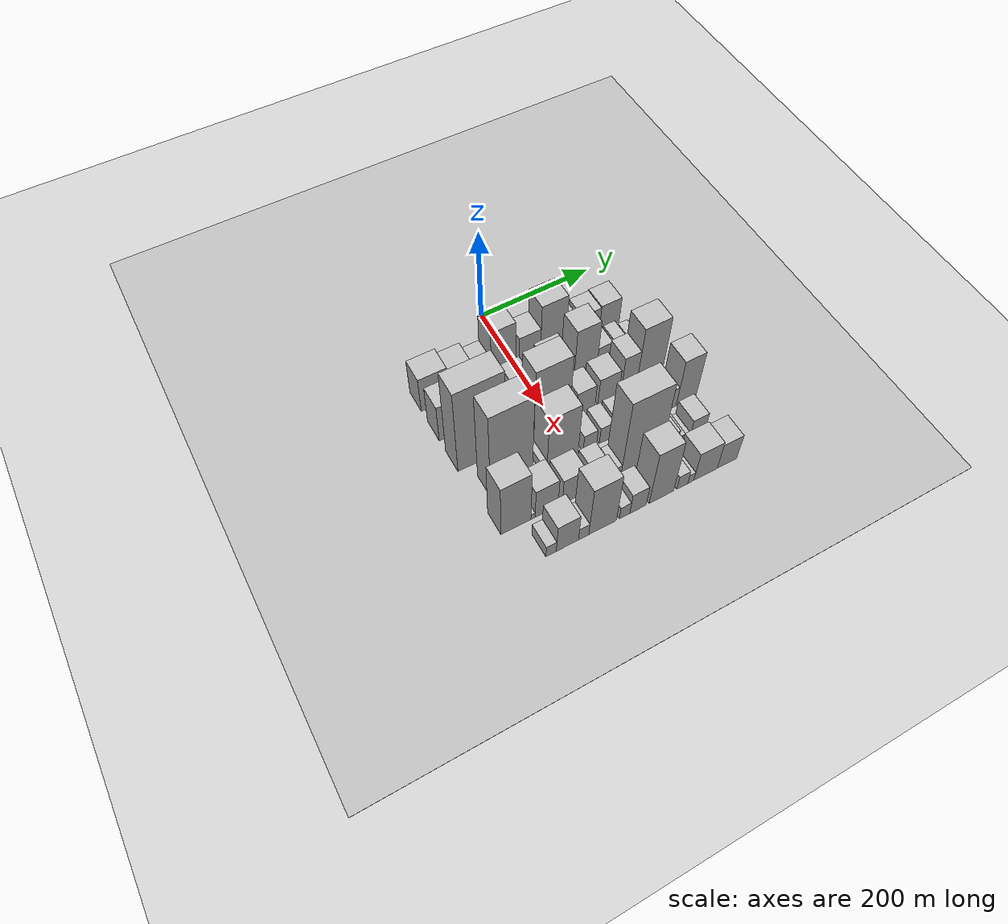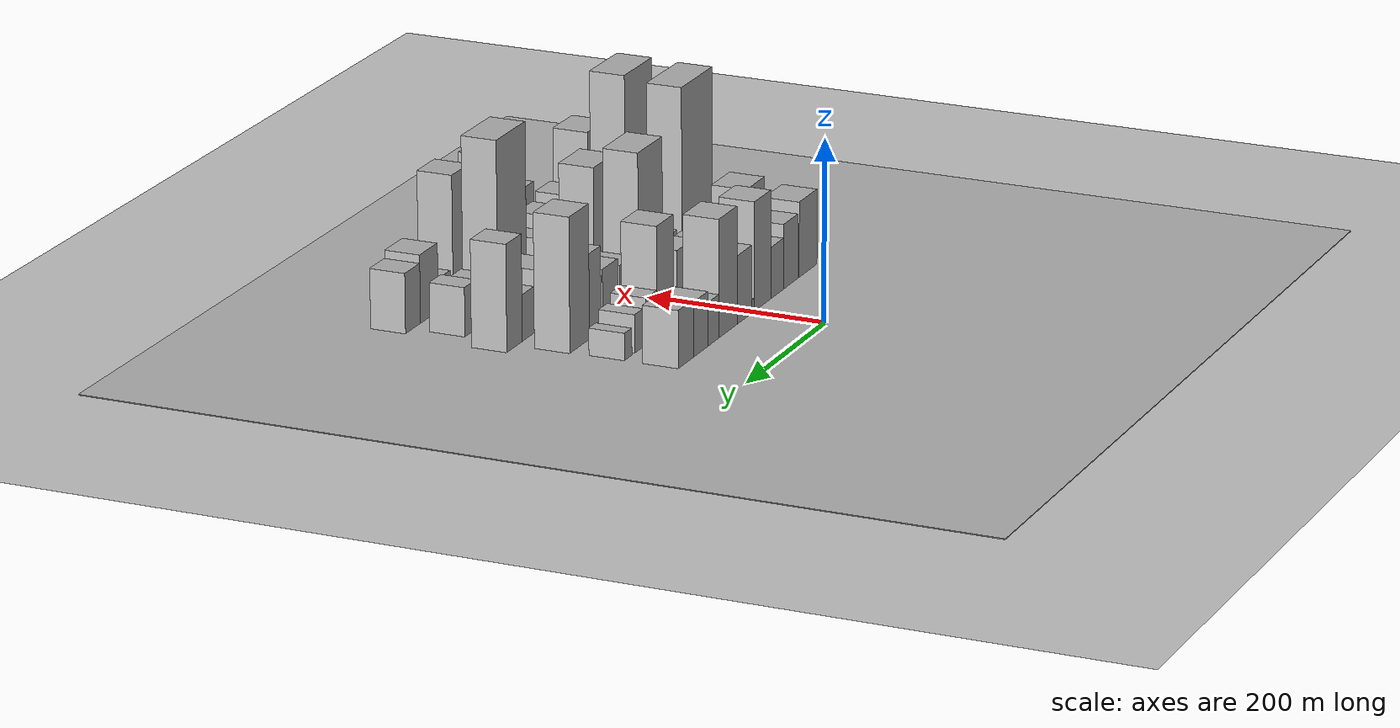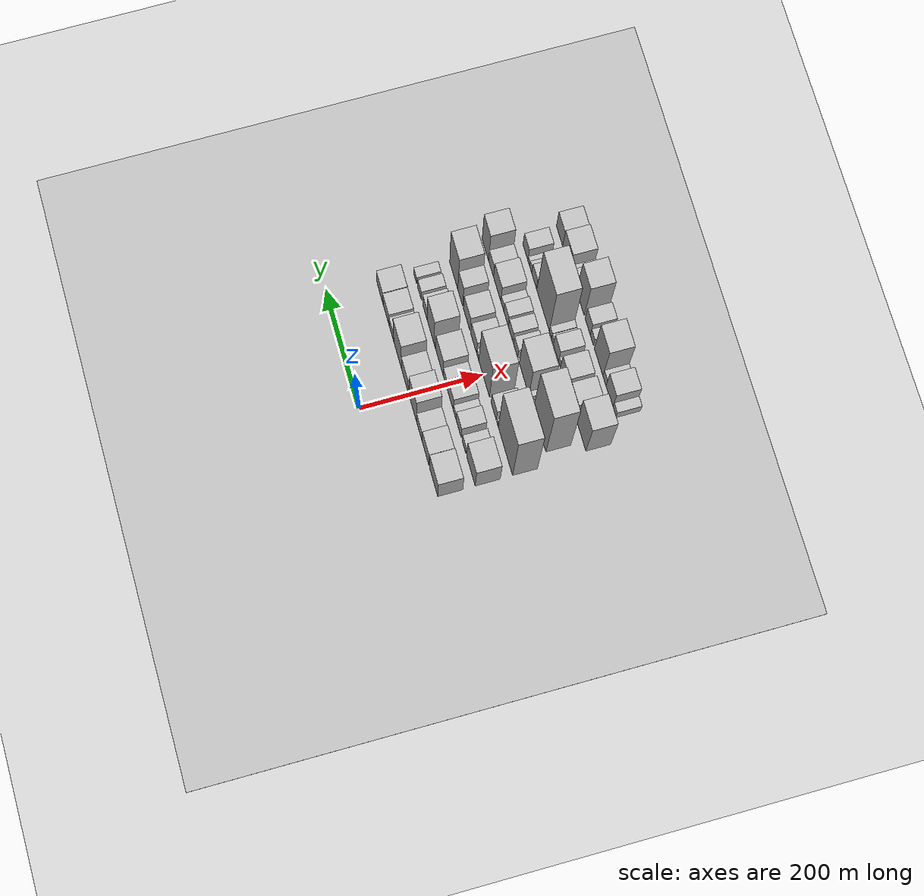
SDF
<sdf version="1.6">
 <world name="default">
  <include><name>ground_plane_1</name><uri>model://HANNAS_ground_plane</uri></include>
  <include>
   <name>ground_plane_2</name>
   <uri>model://HANNAS_ground_plane</uri>
   <pose>100 0 0  0 0 0</pose>
  </include>
  <model name="building_21">
   <static>1</static>
   <pose>100.0000 -144.0142 0 0.000000 0.000000 0.000000</pose>
   <link name="link">
    <pose>0 0 42.00 0 0 0</pose>
    <collision name="collision"><geometry><box><size>40.0000 47.6441 84.0000</size></box></geometry></collision>
    <visual name="visual">
     <cast_shadows>0</cast_shadows>
     <geometry><box><size>40.0000 47.6441 84.0000</size></box></geometry>
     <material>
      <script>
       <uri>model://HANNAS_wall/materials/scripts</uri>
       <uri>model://HANNAS_wall/materials/textures</uri>
       <name>vrc/HANNAS_wall</name>
      </script>
     </material>
    </visual>
   </link>
  </model>
  <model name="building_22">
   <static>1</static>
   <pose>100.0000 -98.3070 0 0.000000 0.000000 0.000000</pose>
   <link name="link">
    <pose>0 0 36.00 0 0 0</pose>
    <collision name="collision"><geometry><box><size>40.0000 37.7701 72.0000</size></box></geometry></collision>
    <visual name="visual">
     <cast_shadows>0</cast_shadows>
     <geometry><box><size>40.0000 37.7701 72.0000</size></box></geometry>
     <material>
      <script>
       <uri>model://HANNAS_wall/materials/scripts</uri>
       <uri>model://HANNAS_wall/materials/textures</uri>
       <name>vrc/HANNAS_wall</name>
      </script>
     </material>
    </visual>
   </link>
  </model>
  <model name="building_23">
   <static>1</static>
   <pose>100.0000 -62.7000 0 0.000000 0.000000 0.000000</pose>
   <link name="link">
    <pose>0 0 28.50 0 0 0</pose>
    <collision name="collision"><geometry><box><size>40.0000 33.4441 57.0000</size></box></geometry></collision>
    <visual name="visual">
     <cast_shadows>0</cast_shadows>
     <geometry><box><size>40.0000 33.4441 57.0000</size></box></geometry>
     <material>
      <script>
       <uri>model://HANNAS_wall/materials/scripts</uri>
       <uri>model://HANNAS_wall/materials/textures</uri>
       <name>vrc/HANNAS_wall</name>
      </script>
     </material>
    </visual>
   </link>
  </model>
  <model name="building_24">
   <static>1</static>
   <pose>100.0000 -24.4865 0 0.000000 0.000000 0.000000</pose>
   <link name="link">
    <pose>0 0 60.00 0 0 0</pose>
    <collision name="collision"><geometry><box><size>40.0000 42.9828 120.0000</size></box></geometry></collision>
    <visual name="visual">
     <cast_shadows>0</cast_shadows>
     <geometry><box><size>40.0000 42.9828 120.0000</size></box></geometry>
     <material>
      <script>
       <uri>model://HANNAS_wall/materials/scripts</uri>
       <uri>model://HANNAS_wall/materials/textures</uri>
       <name>vrc/HANNAS_wall</name>
      </script>
     </material>
    </visual>
   </link>
  </model>
  <model name="building_25">
   <static>1</static>
   <pose>100.0000 0.1174 0 0.000000 0.000000 0.000000</pose>
   <link name="link">
    <pose>0 0 7.50 0 0 0</pose>
    <collision name="collision"><geometry><box><size>40.0000 6.2250 15.0000</size></box></geometry></collision>
    <visual name="visual">
     <cast_shadows>0</cast_shadows>
     <geometry><box><size>40.0000 6.2250 15.0000</size></box></geometry>
     <material>
      <script>
       <uri>model://HANNAS_wall/materials/scripts</uri>
       <uri>model://HANNAS_wall/materials/textures</uri>
       <name>vrc/HANNAS_wall</name>
      </script>
     </material>
    </visual>
   </link>
  </model>
  <model name="building_26">
   <static>1</static>
   <pose>100.0000 22.4754 0 0.000000 0.000000 0.000000</pose>
   <link name="link">
    <pose>0 0 37.50 0 0 0</pose>
    <collision name="collision"><geometry><box><size>40.0000 38.4909 75.0000</size></box></geometry></collision>
    <visual name="visual">
     <cast_shadows>0</cast_shadows>
     <geometry><box><size>40.0000 38.4909 75.0000</size></box></geometry>
     <material>
      <script>
       <uri>model://HANNAS_wall/materials/scripts</uri>
       <uri>model://HANNAS_wall/materials/textures</uri>
       <name>vrc/HANNAS_wall</name>
      </script>
     </material>
    </visual>
   </link>
  </model>
  <model name="building_27">
   <static>1</static>
   <pose>100.0000 64.9591 0 0.000000 0.000000 0.000000</pose>
   <link name="link">
    <pose>0 0 64.50 0 0 0</pose>
    <collision name="collision"><geometry><box><size>40.0000 46.4764 129.0000</size></box></geometry></collision>
    <visual name="visual">
     <cast_shadows>0</cast_shadows>
     <geometry><box><size>40.0000 46.4764 129.0000</size></box></geometry>
     <material>
      <script>
       <uri>model://HANNAS_wall/materials/scripts</uri>
       <uri>model://HANNAS_wall/materials/textures</uri>
       <name>vrc/HANNAS_wall</name>
      </script>
     </material>
    </visual>
   </link>
  </model>
  <model name="building_28">
   <static>1</static>
   <pose>100.0000 101.8593 0 0.000000 0.000000 0.000000</pose>
   <link name="link">
    <pose>0 0 24.00 0 0 0</pose>
    <collision name="collision"><geometry><box><size>40.0000 27.3241 48.0000</size></box></geometry></collision>
    <visual name="visual">
     <cast_shadows>0</cast_shadows>
     <geometry><box><size>40.0000 27.3241 48.0000</size></box></geometry>
     <material>
      <script>
       <uri>model://HANNAS_wall/materials/scripts</uri>
       <uri>model://HANNAS_wall/materials/textures</uri>
       <name>vrc/HANNAS_wall</name>
      </script>
     </material>
    </visual>
   </link>
  </model>
  <model name="building_29">
   <static>1</static>
   <pose>100.0000 133.4685 0 0.000000 0.000000 0.000000</pose>
   <link name="link">
    <pose>0 0 30.00 0 0 0</pose>
    <collision name="collision"><geometry><box><size>40.0000 35.8943 60.0000</size></box></geometry></collision>
    <visual name="visual">
     <cast_shadows>0</cast_shadows>
     <geometry><box><size>40.0000 35.8943 60.0000</size></box></geometry>
     <material>
      <script>
       <uri>model://HANNAS_wall/materials/scripts</uri>
       <uri>model://HANNAS_wall/materials/textures</uri>
       <name>vrc/HANNAS_wall</name>
      </script>
     </material>
    </visual>
   </link>
  </model>
  <model name="building_30">
   <static>1</static>
   <pose>100.0000 170.2295 0 0.000000 0.000000 0.000000</pose>
   <link name="link">
    <pose>0 0 31.50 0 0 0</pose>
    <collision name="collision"><geometry><box><size>40.0000 37.6278 63.0000</size></box></geometry></collision>
    <visual name="visual">
     <cast_shadows>0</cast_shadows>
     <geometry><box><size>40.0000 37.6278 63.0000</size></box></geometry>
     <material>
      <script>
       <uri>model://HANNAS_wall/materials/scripts</uri>
       <uri>model://HANNAS_wall/materials/textures</uri>
       <name>vrc/HANNAS_wall</name>
      </script>
     </material>
    </visual>
   </link>
  </model>
  <model name="building_77">
   <static>1</static>
   <pose>160.0000 -143.2705 0 0.000000 0.000000 0.000000</pose>
   <link name="link">
    <pose>0 0 45.00 0 0 0</pose>
    <collision name="collision"><geometry><box><size>40.0000 47.9055 90.0000</size></box></geometry></collision>
    <visual name="visual">
     <cast_shadows>0</cast_shadows>
     <geometry><box><size>40.0000 47.9055 90.0000</size></box></geometry>
     <material>
      <script>
       <uri>model://HANNAS_wall/materials/scripts</uri>
       <uri>model://HANNAS_wall/materials/textures</uri>
       <name>vrc/HANNAS_wall</name>
      </script>
     </material>
    </visual>
   </link>
  </model>
  <model name="building_78">
   <static>1</static>
   <pose>160.0000 -103.8420 0 0.000000 0.000000 0.000000</pose>
   <link name="link">
    <pose>0 0 19.50 0 0 0</pose>
    <collision name="collision"><geometry><box><size>40.0000 20.9514 39.0000</size></box></geometry></collision>
    <visual name="visual">
     <cast_shadows>0</cast_shadows>
     <geometry><box><size>40.0000 20.9514 39.0000</size></box></geometry>
     <material>
      <script>
       <uri>model://HANNAS_wall/materials/scripts</uri>
       <uri>model://HANNAS_wall/materials/textures</uri>
       <name>vrc/HANNAS_wall</name>
      </script>
     </material>
    </visual>
   </link>
  </model>
  <model name="building_79">
   <static>1</static>
   <pose>160.0000 -73.3460 0 0.000000 0.000000 0.000000</pose>
   <link name="link">
    <pose>0 0 27.00 0 0 0</pose>
    <collision name="collision"><geometry><box><size>40.0000 28.0406 54.0000</size></box></geometry></collision>
    <visual name="visual">
     <cast_shadows>0</cast_shadows>
     <geometry><box><size>40.0000 28.0406 54.0000</size></box></geometry>
     <material>
      <script>
       <uri>model://HANNAS_wall/materials/scripts</uri>
       <uri>model://HANNAS_wall/materials/textures</uri>
       <name>vrc/HANNAS_wall</name>
      </script>
     </material>
    </visual>
   </link>
  </model>
  <model name="building_80">
   <static>1</static>
   <pose>160.0000 -50.8423 0 0.000000 0.000000 0.000000</pose>
   <link name="link">
    <pose>0 0 16.50 0 0 0</pose>
    <collision name="collision"><geometry><box><size>40.0000 16.9666 33.0000</size></box></geometry></collision>
    <visual name="visual">
     <cast_shadows>0</cast_shadows>
     <geometry><box><size>40.0000 16.9666 33.0000</size></box></geometry>
     <material>
      <script>
       <uri>model://HANNAS_wall/materials/scripts</uri>
       <uri>model://HANNAS_wall/materials/textures</uri>
       <name>vrc/HANNAS_wall</name>
      </script>
     </material>
    </visual>
   </link>
  </model>
  <model name="building_81">
   <static>1</static>
   <pose>160.0000 -25.5611 0 0.000000 0.000000 0.000000</pose>
   <link name="link">
    <pose>0 0 31.50 0 0 0</pose>
    <collision name="collision"><geometry><box><size>40.0000 33.5958 63.0000</size></box></geometry></collision>
    <visual name="visual">
     <cast_shadows>0</cast_shadows>
     <geometry><box><size>40.0000 33.5958 63.0000</size></box></geometry>
     <material>
      <script>
       <uri>model://HANNAS_wall/materials/scripts</uri>
       <uri>model://HANNAS_wall/materials/textures</uri>
       <name>vrc/HANNAS_wall</name>
      </script>
     </material>
    </visual>
   </link>
  </model>
  <model name="building_82">
   <static>1</static>
   <pose>160.0000 3.8361 0 0.000000 0.000000 0.000000</pose>
   <link name="link">
    <pose>0 0 21.00 0 0 0</pose>
    <collision name="collision"><geometry><box><size>40.0000 25.1987 42.0000</size></box></geometry></collision>
    <visual name="visual">
     <cast_shadows>0</cast_shadows>
     <geometry><box><size>40.0000 25.1987 42.0000</size></box></geometry>
     <material>
      <script>
       <uri>model://HANNAS_wall/materials/scripts</uri>
       <uri>model://HANNAS_wall/materials/textures</uri>
       <name>vrc/HANNAS_wall</name>
      </script>
     </material>
    </visual>
   </link>
  </model>
  <model name="building_83">
   <static>1</static>
   <pose>160.0000 37.7753 0 0.000000 0.000000 0.000000</pose>
   <link name="link">
    <pose>0 0 39.00 0 0 0</pose>
    <collision name="collision"><geometry><box><size>40.0000 42.6795 78.0000</size></box></geometry></collision>
    <visual name="visual">
     <cast_shadows>0</cast_shadows>
     <geometry><box><size>40.0000 42.6795 78.0000</size></box></geometry>
     <material>
      <script>
       <uri>model://HANNAS_wall/materials/scripts</uri>
       <uri>model://HANNAS_wall/materials/textures</uri>
       <name>vrc/HANNAS_wall</name>
      </script>
     </material>
    </visual>
   </link>
  </model>
  <model name="building_84">
   <static>1</static>
   <pose>160.0000 63.5504 0 0.000000 0.000000 0.000000</pose>
   <link name="link">
    <pose>0 0 10.50 0 0 0</pose>
    <collision name="collision"><geometry><box><size>40.0000 8.8708 21.0000</size></box></geometry></collision>
    <visual name="visual">
     <cast_shadows>0</cast_shadows>
     <geometry><box><size>40.0000 8.8708 21.0000</size></box></geometry>
     <material>
      <script>
       <uri>model://HANNAS_wall/materials/scripts</uri>
       <uri>model://HANNAS_wall/materials/textures</uri>
       <name>vrc/HANNAS_wall</name>
      </script>
     </material>
    </visual>
   </link>
  </model>
  <model name="building_85">
   <static>1</static>
   <pose>160.0000 88.8913 0 0.000000 0.000000 0.000000</pose>
   <link name="link">
    <pose>0 0 60.00 0 0 0</pose>
    <collision name="collision"><geometry><box><size>40.0000 41.8110 120.0000</size></box></geometry></collision>
    <visual name="visual">
     <cast_shadows>0</cast_shadows>
     <geometry><box><size>40.0000 41.8110 120.0000</size></box></geometry>
     <material>
      <script>
       <uri>model://HANNAS_wall/materials/scripts</uri>
       <uri>model://HANNAS_wall/materials/textures</uri>
       <name>vrc/HANNAS_wall</name>
      </script>
     </material>
    </visual>
   </link>
  </model>
  <model name="building_86">
   <static>1</static>
   <pose>160.0000 122.9664 0 0.000000 0.000000 0.000000</pose>
   <link name="link">
    <pose>0 0 25.50 0 0 0</pose>
    <collision name="collision"><geometry><box><size>40.0000 26.3391 51.0000</size></box></geometry></collision>
    <visual name="visual">
     <cast_shadows>0</cast_shadows>
     <geometry><box><size>40.0000 26.3391 51.0000</size></box></geometry>
     <material>
      <script>
       <uri>model://HANNAS_wall/materials/scripts</uri>
       <uri>model://HANNAS_wall/materials/textures</uri>
       <name>vrc/HANNAS_wall</name>
      </script>
     </material>
    </visual>
   </link>
  </model>
  <model name="building_87">
   <static>1</static>
   <pose>160.0000 153.7759 0 0.000000 0.000000 0.000000</pose>
   <link name="link">
    <pose>0 0 21.00 0 0 0</pose>
    <collision name="collision"><geometry><box><size>40.0000 21.2799 42.0000</size></box></geometry></collision>
    <visual name="visual">
     <cast_shadows>0</cast_shadows>
     <geometry><box><size>40.0000 21.2799 42.0000</size></box></geometry>
     <material>
      <script>
       <uri>model://HANNAS_wall/materials/scripts</uri>
       <uri>model://HANNAS_wall/materials/textures</uri>
       <name>vrc/HANNAS_wall</name>
      </script>
     </material>
    </visual>
   </link>
  </model>
  <model name="building_88">
   <static>1</static>
   <pose>160.0000 180.1921 0 0.000000 0.000000 0.000000</pose>
   <link name="link">
    <pose>0 0 15.00 0 0 0</pose>
    <collision name="collision"><geometry><box><size>40.0000 17.5525 30.0000</size></box></geometry></collision>
    <visual name="visual">
     <cast_shadows>0</cast_shadows>
     <geometry><box><size>40.0000 17.5525 30.0000</size></box></geometry>
     <material>
      <script>
       <uri>model://HANNAS_wall/materials/scripts</uri>
       <uri>model://HANNAS_wall/materials/textures</uri>
       <name>vrc/HANNAS_wall</name>
      </script>
     </material>
    </visual>
   </link>
  </model>
  <model name="building_134">
   <static>1</static>
   <pose>220.0000 -126.7971 0 0.000000 0.000000 0.000000</pose>
   <link name="link">
    <pose>0 0 102.00 0 0 0</pose>
    <collision name="collision"><geometry><box><size>40.0000 79.7557 204.0000</size></box></geometry></collision>
    <visual name="visual">
     <cast_shadows>0</cast_shadows>
     <geometry><box><size>40.0000 79.7557 204.0000</size></box></geometry>
     <material>
      <script>
       <uri>model://HANNAS_wall/materials/scripts</uri>
       <uri>model://HANNAS_wall/materials/textures</uri>
       <name>vrc/HANNAS_wall</name>
      </script>
     </material>
    </visual>
   </link>
  </model>
  <model name="building_135">
   <static>1</static>
   <pose>220.0000 -82.6790 0 0.000000 0.000000 0.000000</pose>
   <link name="link">
    <pose>0 0 9.00 0 0 0</pose>
    <collision name="collision"><geometry><box><size>40.0000 8.4806 18.0000</size></box></geometry></collision>
    <visual name="visual">
     <cast_shadows>0</cast_shadows>
     <geometry><box><size>40.0000 8.4806 18.0000</size></box></geometry>
     <material>
      <script>
       <uri>model://HANNAS_wall/materials/scripts</uri>
       <uri>model://HANNAS_wall/materials/textures</uri>
       <name>vrc/HANNAS_wall</name>
      </script>
     </material>
    </visual>
   </link>
  </model>
  <model name="building_136">
   <static>1</static>
   <pose>220.0000 -60.9569 0 0.000000 0.000000 0.000000</pose>
   <link name="link">
    <pose>0 0 25.50 0 0 0</pose>
    <collision name="collision"><geometry><box><size>40.0000 28.9636 51.0000</size></box></geometry></collision>
    <visual name="visual">
     <cast_shadows>0</cast_shadows>
     <geometry><box><size>40.0000 28.9636 51.0000</size></box></geometry>
     <material>
      <script>
       <uri>model://HANNAS_wall/materials/scripts</uri>
       <uri>model://HANNAS_wall/materials/textures</uri>
       <name>vrc/HANNAS_wall</name>
      </script>
     </material>
    </visual>
   </link>
  </model>
  <model name="building_137">
   <static>1</static>
   <pose>220.0000 -6.9472 0 0.000000 0.000000 0.000000</pose>
   <link name="link">
    <pose>0 0 82.50 0 0 0</pose>
    <collision name="collision"><geometry><box><size>40.0000 61.0559 165.0000</size></box></geometry></collision>
    <visual name="visual">
     <cast_shadows>0</cast_shadows>
     <geometry><box><size>40.0000 61.0559 165.0000</size></box></geometry>
     <material>
      <script>
       <uri>model://HANNAS_wall/materials/scripts</uri>
       <uri>model://HANNAS_wall/materials/textures</uri>
       <name>vrc/HANNAS_wall</name>
      </script>
     </material>
    </visual>
   </link>
  </model>
  <model name="building_138">
   <static>1</static>
   <pose>220.0000 29.9405 0 0.000000 0.000000 0.000000</pose>
   <link name="link">
    <pose>0 0 13.50 0 0 0</pose>
    <collision name="collision"><geometry><box><size>40.0000 12.7195 27.0000</size></box></geometry></collision>
    <visual name="visual">
     <cast_shadows>0</cast_shadows>
     <geometry><box><size>40.0000 12.7195 27.0000</size></box></geometry>
     <material>
      <script>
       <uri>model://HANNAS_wall/materials/scripts</uri>
       <uri>model://HANNAS_wall/materials/textures</uri>
       <name>vrc/HANNAS_wall</name>
      </script>
     </material>
    </visual>
   </link>
  </model>
  <model name="building_139">
   <static>1</static>
   <pose>220.0000 52.9261 0 0.000000 0.000000 0.000000</pose>
   <link name="link">
    <pose>0 0 28.50 0 0 0</pose>
    <collision name="collision"><geometry><box><size>40.0000 33.2518 57.0000</size></box></geometry></collision>
    <visual name="visual">
     <cast_shadows>0</cast_shadows>
     <geometry><box><size>40.0000 33.2518 57.0000</size></box></geometry>
     <material>
      <script>
       <uri>model://HANNAS_wall/materials/scripts</uri>
       <uri>model://HANNAS_wall/materials/textures</uri>
       <name>vrc/HANNAS_wall</name>
      </script>
     </material>
    </visual>
   </link>
  </model>
  <model name="building_140">
   <static>1</static>
   <pose>220.0000 93.3558 0 0.000000 0.000000 0.000000</pose>
   <link name="link">
    <pose>0 0 33.00 0 0 0</pose>
    <collision name="collision"><geometry><box><size>40.0000 37.6076 66.0000</size></box></geometry></collision>
    <visual name="visual">
     <cast_shadows>0</cast_shadows>
     <geometry><box><size>40.0000 37.6076 66.0000</size></box></geometry>
     <material>
      <script>
       <uri>model://HANNAS_wall/materials/scripts</uri>
       <uri>model://HANNAS_wall/materials/textures</uri>
       <name>vrc/HANNAS_wall</name>
      </script>
     </material>
    </visual>
   </link>
  </model>
  <model name="building_141">
   <static>1</static>
   <pose>220.0000 130.4084 0 0.000000 0.000000 0.000000</pose>
   <link name="link">
    <pose>0 0 46.50 0 0 0</pose>
    <collision name="collision"><geometry><box><size>40.0000 28.4976 93.0000</size></box></geometry></collision>
    <visual name="visual">
     <cast_shadows>0</cast_shadows>
     <geometry><box><size>40.0000 28.4976 93.0000</size></box></geometry>
     <material>
      <script>
       <uri>model://HANNAS_wall/materials/scripts</uri>
       <uri>model://HANNAS_wall/materials/textures</uri>
       <name>vrc/HANNAS_wall</name>
      </script>
     </material>
    </visual>
   </link>
  </model>
  <model name="building_142">
   <static>1</static>
   <pose>220.0000 168.2703 0 0.000000 0.000000 0.000000</pose>
   <link name="link">
    <pose>0 0 73.50 0 0 0</pose>
    <collision name="collision"><geometry><box><size>40.0000 47.2261 147.0000</size></box></geometry></collision>
    <visual name="visual">
     <cast_shadows>0</cast_shadows>
     <geometry><box><size>40.0000 47.2261 147.0000</size></box></geometry>
     <material>
      <script>
       <uri>model://HANNAS_wall/materials/scripts</uri>
       <uri>model://HANNAS_wall/materials/textures</uri>
       <name>vrc/HANNAS_wall</name>
      </script>
     </material>
    </visual>
   </link>
  </model>
  <model name="building_186">
   <static>1</static>
   <pose>280.0000 -109.8024 0 0.000000 0.000000 0.000000</pose>
   <link name="link">
    <pose>0 0 106.50 0 0 0</pose>
    <collision name="collision"><geometry><box><size>40.0000 69.6565 213.0000</size></box></geometry></collision>
    <visual name="visual">
     <cast_shadows>0</cast_shadows>
     <geometry><box><size>40.0000 69.6565 213.0000</size></box></geometry>
     <material>
      <script>
       <uri>model://HANNAS_wall/materials/scripts</uri>
       <uri>model://HANNAS_wall/materials/textures</uri>
       <name>vrc/HANNAS_wall</name>
      </script>
     </material>
    </visual>
   </link>
  </model>
  <model name="building_187">
   <static>1</static>
   <pose>280.0000 -70.4644 0 0.000000 0.000000 0.000000</pose>
   <link name="link">
    <pose>0 0 10.50 0 0 0</pose>
    <collision name="collision"><geometry><box><size>40.0000 9.0195 21.0000</size></box></geometry></collision>
    <visual name="visual">
     <cast_shadows>0</cast_shadows>
     <geometry><box><size>40.0000 9.0195 21.0000</size></box></geometry>
     <material>
      <script>
       <uri>model://HANNAS_wall/materials/scripts</uri>
       <uri>model://HANNAS_wall/materials/textures</uri>
       <name>vrc/HANNAS_wall</name>
      </script>
     </material>
    </visual>
   </link>
  </model>
  <model name="building_188">
   <static>1</static>
   <pose>280.0000 -55.0757 0 0.000000 0.000000 0.000000</pose>
   <link name="link">
    <pose>0 0 12.00 0 0 0</pose>
    <collision name="collision"><geometry><box><size>40.0000 9.7579 24.0000</size></box></geometry></collision>
    <visual name="visual">
     <cast_shadows>0</cast_shadows>
     <geometry><box><size>40.0000 9.7579 24.0000</size></box></geometry>
     <material>
      <script>
       <uri>model://HANNAS_wall/materials/scripts</uri>
       <uri>model://HANNAS_wall/materials/textures</uri>
       <name>vrc/HANNAS_wall</name>
      </script>
     </material>
    </visual>
   </link>
  </model>
  <model name="building_189">
   <static>1</static>
   <pose>280.0000 -23.6071 0 0.000000 0.000000 0.000000</pose>
   <link name="link">
    <pose>0 0 67.50 0 0 0</pose>
    <collision name="collision"><geometry><box><size>40.0000 53.1794 135.0000</size></box></geometry></collision>
    <visual name="visual">
     <cast_shadows>0</cast_shadows>
     <geometry><box><size>40.0000 53.1794 135.0000</size></box></geometry>
     <material>
      <script>
       <uri>model://HANNAS_wall/materials/scripts</uri>
       <uri>model://HANNAS_wall/materials/textures</uri>
       <name>vrc/HANNAS_wall</name>
      </script>
     </material>
    </visual>
   </link>
  </model>
  <model name="building_190">
   <static>1</static>
   <pose>280.0000 23.6554 0 0.000000 0.000000 0.000000</pose>
   <link name="link">
    <pose>0 0 21.00 0 0 0</pose>
    <collision name="collision"><geometry><box><size>40.0000 23.3455 42.0000</size></box></geometry></collision>
    <visual name="visual">
     <cast_shadows>0</cast_shadows>
     <geometry><box><size>40.0000 23.3455 42.0000</size></box></geometry>
     <material>
      <script>
       <uri>model://HANNAS_wall/materials/scripts</uri>
       <uri>model://HANNAS_wall/materials/textures</uri>
       <name>vrc/HANNAS_wall</name>
      </script>
     </material>
    </visual>
   </link>
  </model>
  <model name="building_191">
   <static>1</static>
   <pose>280.0000 52.1906 0 0.000000 0.000000 0.000000</pose>
   <link name="link">
    <pose>0 0 21.00 0 0 0</pose>
    <collision name="collision"><geometry><box><size>40.0000 23.7249 42.0000</size></box></geometry></collision>
    <visual name="visual">
     <cast_shadows>0</cast_shadows>
     <geometry><box><size>40.0000 23.7249 42.0000</size></box></geometry>
     <material>
      <script>
       <uri>model://HANNAS_wall/materials/scripts</uri>
       <uri>model://HANNAS_wall/materials/textures</uri>
       <name>vrc/HANNAS_wall</name>
      </script>
     </material>
    </visual>
   </link>
  </model>
  <model name="building_192">
   <static>1</static>
   <pose>280.0000 78.9940 0 0.000000 0.000000 0.000000</pose>
   <link name="link">
    <pose>0 0 22.50 0 0 0</pose>
    <collision name="collision"><geometry><box><size>40.0000 23.8820 45.0000</size></box></geometry></collision>
    <visual name="visual">
     <cast_shadows>0</cast_shadows>
     <geometry><box><size>40.0000 23.8820 45.0000</size></box></geometry>
     <material>
      <script>
       <uri>model://HANNAS_wall/materials/scripts</uri>
       <uri>model://HANNAS_wall/materials/textures</uri>
       <name>vrc/HANNAS_wall</name>
      </script>
     </material>
    </visual>
   </link>
  </model>
  <model name="building_193">
   <static>1</static>
   <pose>280.0000 99.5577 0 0.000000 0.000000 0.000000</pose>
   <link name="link">
    <pose>0 0 15.00 0 0 0</pose>
    <collision name="collision"><geometry><box><size>40.0000 17.2454 30.0000</size></box></geometry></collision>
    <visual name="visual">
     <cast_shadows>0</cast_shadows>
     <geometry><box><size>40.0000 17.2454 30.0000</size></box></geometry>
     <material>
      <script>
       <uri>model://HANNAS_wall/materials/scripts</uri>
       <uri>model://HANNAS_wall/materials/textures</uri>
       <name>vrc/HANNAS_wall</name>
      </script>
     </material>
    </visual>
   </link>
  </model>
  <model name="building_194">
   <static>1</static>
   <pose>280.0000 128.7288 0 0.000000 0.000000 0.000000</pose>
   <link name="link">
    <pose>0 0 34.50 0 0 0</pose>
    <collision name="collision"><geometry><box><size>40.0000 41.0967 69.0000</size></box></geometry></collision>
    <visual name="visual">
     <cast_shadows>0</cast_shadows>
     <geometry><box><size>40.0000 41.0967 69.0000</size></box></geometry>
     <material>
      <script>
       <uri>model://HANNAS_wall/materials/scripts</uri>
       <uri>model://HANNAS_wall/materials/textures</uri>
       <name>vrc/HANNAS_wall</name>
      </script>
     </material>
    </visual>
   </link>
  </model>
  <model name="building_195">
   <static>1</static>
   <pose>280.0000 163.8346 0 0.000000 0.000000 0.000000</pose>
   <link name="link">
    <pose>0 0 25.50 0 0 0</pose>
    <collision name="collision"><geometry><box><size>40.0000 29.1147 51.0000</size></box></geometry></collision>
    <visual name="visual">
     <cast_shadows>0</cast_shadows>
     <geometry><box><size>40.0000 29.1147 51.0000</size></box></geometry>
     <material>
      <script>
       <uri>model://HANNAS_wall/materials/scripts</uri>
       <uri>model://HANNAS_wall/materials/textures</uri>
       <name>vrc/HANNAS_wall</name>
      </script>
     </material>
    </visual>
   </link>
  </model>
  <model name="building_196">
   <static>1</static>
   <pose>280.0000 196.8121 0 0.000000 0.000000 0.000000</pose>
   <link name="link">
    <pose>0 0 58.50 0 0 0</pose>
    <collision name="collision"><geometry><box><size>40.0000 36.8404 117.0000</size></box></geometry></collision>
    <visual name="visual">
     <cast_shadows>0</cast_shadows>
     <geometry><box><size>40.0000 36.8404 117.0000</size></box></geometry>
     <material>
      <script>
       <uri>model://HANNAS_wall/materials/scripts</uri>
       <uri>model://HANNAS_wall/materials/textures</uri>
       <name>vrc/HANNAS_wall</name>
      </script>
     </material>
    </visual>
   </link>
  </model>
  <model name="building_242">
   <static>1</static>
   <pose>340.0000 -135.6053 0 0.000000 0.000000 0.000000</pose>
   <link name="link">
    <pose>0 0 66.00 0 0 0</pose>
    <collision name="collision"><geometry><box><size>40.0000 48.5410 132.0000</size></box></geometry></collision>
    <visual name="visual">
     <cast_shadows>0</cast_shadows>
     <geometry><box><size>40.0000 48.5410 132.0000</size></box></geometry>
     <material>
      <script>
       <uri>model://HANNAS_wall/materials/scripts</uri>
       <uri>model://HANNAS_wall/materials/textures</uri>
       <name>vrc/HANNAS_wall</name>
      </script>
     </material>
    </visual>
   </link>
  </model>
  <model name="building_243">
   <static>1</static>
   <pose>340.0000 -107.8187 0 0.000000 0.000000 0.000000</pose>
   <link name="link">
    <pose>0 0 7.50 0 0 0</pose>
    <collision name="collision"><geometry><box><size>40.0000 7.0322 15.0000</size></box></geometry></collision>
    <visual name="visual">
     <cast_shadows>0</cast_shadows>
     <geometry><box><size>40.0000 7.0322 15.0000</size></box></geometry>
     <material>
      <script>
       <uri>model://HANNAS_wall/materials/scripts</uri>
       <uri>model://HANNAS_wall/materials/textures</uri>
       <name>vrc/HANNAS_wall</name>
      </script>
     </material>
    </visual>
   </link>
  </model>
  <model name="building_244">
   <static>1</static>
   <pose>340.0000 -85.2824 0 0.000000 0.000000 0.000000</pose>
   <link name="link">
    <pose>0 0 37.50 0 0 0</pose>
    <collision name="collision"><geometry><box><size>40.0000 38.0403 75.0000</size></box></geometry></collision>
    <visual name="visual">
     <cast_shadows>0</cast_shadows>
     <geometry><box><size>40.0000 38.0403 75.0000</size></box></geometry>
     <material>
      <script>
       <uri>model://HANNAS_wall/materials/scripts</uri>
       <uri>model://HANNAS_wall/materials/textures</uri>
       <name>vrc/HANNAS_wall</name>
      </script>
     </material>
    </visual>
   </link>
  </model>
  <model name="building_245">
   <static>1</static>
   <pose>340.0000 -40.0887 0 0.000000 0.000000 0.000000</pose>
   <link name="link">
    <pose>0 0 33.00 0 0 0</pose>
    <collision name="collision"><geometry><box><size>40.0000 38.3469 66.0000</size></box></geometry></collision>
    <visual name="visual">
     <cast_shadows>0</cast_shadows>
     <geometry><box><size>40.0000 38.3469 66.0000</size></box></geometry>
     <material>
      <script>
       <uri>model://HANNAS_wall/materials/scripts</uri>
       <uri>model://HANNAS_wall/materials/textures</uri>
       <name>vrc/HANNAS_wall</name>
      </script>
     </material>
    </visual>
   </link>
  </model>
  <model name="building_246">
   <static>1</static>
   <pose>340.0000 -15.7140 0 0.000000 0.000000 0.000000</pose>
   <link name="link">
    <pose>0 0 12.00 0 0 0</pose>
    <collision name="collision"><geometry><box><size>40.0000 10.4026 24.0000</size></box></geometry></collision>
    <visual name="visual">
     <cast_shadows>0</cast_shadows>
     <geometry><box><size>40.0000 10.4026 24.0000</size></box></geometry>
     <material>
      <script>
       <uri>model://HANNAS_wall/materials/scripts</uri>
       <uri>model://HANNAS_wall/materials/textures</uri>
       <name>vrc/HANNAS_wall</name>
      </script>
     </material>
    </visual>
   </link>
  </model>
  <model name="building_247">
   <static>1</static>
   <pose>340.0000 3.6732 0 0.000000 0.000000 0.000000</pose>
   <link name="link">
    <pose>0 0 27.00 0 0 0</pose>
    <collision name="collision"><geometry><box><size>40.0000 28.3719 54.0000</size></box></geometry></collision>
    <visual name="visual">
     <cast_shadows>0</cast_shadows>
     <geometry><box><size>40.0000 28.3719 54.0000</size></box></geometry>
     <material>
      <script>
       <uri>model://HANNAS_wall/materials/scripts</uri>
       <uri>model://HANNAS_wall/materials/textures</uri>
       <name>vrc/HANNAS_wall</name>
      </script>
     </material>
    </visual>
   </link>
  </model>
  <model name="building_248">
   <static>1</static>
   <pose>340.0000 23.0651 0 0.000000 0.000000 0.000000</pose>
   <link name="link">
    <pose>0 0 12.00 0 0 0</pose>
    <collision name="collision"><geometry><box><size>40.0000 10.4118 24.0000</size></box></geometry></collision>
    <visual name="visual">
     <cast_shadows>0</cast_shadows>
     <geometry><box><size>40.0000 10.4118 24.0000</size></box></geometry>
     <material>
      <script>
       <uri>model://HANNAS_wall/materials/scripts</uri>
       <uri>model://HANNAS_wall/materials/textures</uri>
       <name>vrc/HANNAS_wall</name>
      </script>
     </material>
    </visual>
   </link>
  </model>
  <model name="building_249">
   <static>1</static>
   <pose>340.0000 34.5957 0 0.000000 0.000000 0.000000</pose>
   <link name="link">
    <pose>0 0 13.50 0 0 0</pose>
    <collision name="collision"><geometry><box><size>40.0000 12.6495 27.0000</size></box></geometry></collision>
    <visual name="visual">
     <cast_shadows>0</cast_shadows>
     <geometry><box><size>40.0000 12.6495 27.0000</size></box></geometry>
     <material>
      <script>
       <uri>model://HANNAS_wall/materials/scripts</uri>
       <uri>model://HANNAS_wall/materials/textures</uri>
       <name>vrc/HANNAS_wall</name>
      </script>
     </material>
    </visual>
   </link>
  </model>
  <model name="building_250">
   <static>1</static>
   <pose>340.0000 75.7639 0 0.000000 0.000000 0.000000</pose>
   <link name="link">
    <pose>0 0 94.50 0 0 0</pose>
    <collision name="collision"><geometry><box><size>40.0000 69.6870 189.0000</size></box></geometry></collision>
    <visual name="visual">
     <cast_shadows>0</cast_shadows>
     <geometry><box><size>40.0000 69.6870 189.0000</size></box></geometry>
     <material>
      <script>
       <uri>model://HANNAS_wall/materials/scripts</uri>
       <uri>model://HANNAS_wall/materials/textures</uri>
       <name>vrc/HANNAS_wall</name>
      </script>
     </material>
    </visual>
   </link>
  </model>
  <model name="building_251">
   <static>1</static>
   <pose>340.0000 126.7498 0 0.000000 0.000000 0.000000</pose>
   <link name="link">
    <pose>0 0 22.50 0 0 0</pose>
    <collision name="collision"><geometry><box><size>40.0000 26.2848 45.0000</size></box></geometry></collision>
    <visual name="visual">
     <cast_shadows>0</cast_shadows>
     <geometry><box><size>40.0000 26.2848 45.0000</size></box></geometry>
     <material>
      <script>
       <uri>model://HANNAS_wall/materials/scripts</uri>
       <uri>model://HANNAS_wall/materials/textures</uri>
       <name>vrc/HANNAS_wall</name>
      </script>
     </material>
    </visual>
   </link>
  </model>
  <model name="building_252">
   <static>1</static>
   <pose>340.0000 145.5992 0 0.000000 0.000000 0.000000</pose>
   <link name="link">
    <pose>0 0 13.50 0 0 0</pose>
    <collision name="collision"><geometry><box><size>40.0000 11.4140 27.0000</size></box></geometry></collision>
    <visual name="visual">
     <cast_shadows>0</cast_shadows>
     <geometry><box><size>40.0000 11.4140 27.0000</size></box></geometry>
     <material>
      <script>
       <uri>model://HANNAS_wall/materials/scripts</uri>
       <uri>model://HANNAS_wall/materials/textures</uri>
       <name>vrc/HANNAS_wall</name>
      </script>
     </material>
    </visual>
   </link>
  </model>
  <model name="building_253">
   <static>1</static>
   <pose>340.0000 156.3350 0 0.000000 0.000000 0.000000</pose>
   <link name="link">
    <pose>0 0 10.50 0 0 0</pose>
    <collision name="collision"><geometry><box><size>40.0000 10.0577 21.0000</size></box></geometry></collision>
    <visual name="visual">
     <cast_shadows>0</cast_shadows>
     <geometry><box><size>40.0000 10.0577 21.0000</size></box></geometry>
     <material>
      <script>
       <uri>model://HANNAS_wall/materials/scripts</uri>
       <uri>model://HANNAS_wall/materials/textures</uri>
       <name>vrc/HANNAS_wall</name>
      </script>
     </material>
    </visual>
   </link>
  </model>
  <model name="building_254">
   <static>1</static>
   <pose>340.0000 175.2788 0 0.000000 0.000000 0.000000</pose>
   <link name="link">
    <pose>0 0 27.00 0 0 0</pose>
    <collision name="collision"><geometry><box><size>40.0000 27.8299 54.0000</size></box></geometry></collision>
    <visual name="visual">
     <cast_shadows>0</cast_shadows>
     <geometry><box><size>40.0000 27.8299 54.0000</size></box></geometry>
     <material>
      <script>
       <uri>model://HANNAS_wall/materials/scripts</uri>
       <uri>model://HANNAS_wall/materials/textures</uri>
       <name>vrc/HANNAS_wall</name>
      </script>
     </material>
    </visual>
   </link>
  </model>
  <model name="building_298">
   <static>1</static>
   <pose>400.0000 -112.7538 0 0.000000 0.000000 0.000000</pose>
   <link name="link">
    <pose>0 0 15.00 0 0 0</pose>
    <collision name="collision"><geometry><box><size>40.0000 16.7942 30.0000</size></box></geometry></collision>
    <visual name="visual">
     <cast_shadows>0</cast_shadows>
     <geometry><box><size>40.0000 16.7942 30.0000</size></box></geometry>
     <material>
      <script>
       <uri>model://HANNAS_wall/materials/scripts</uri>
       <uri>model://HANNAS_wall/materials/textures</uri>
       <name>vrc/HANNAS_wall</name>
      </script>
     </material>
    </visual>
   </link>
  </model>
  <model name="building_299">
   <static>1</static>
   <pose>400.0000 -86.2975 0 0.000000 0.000000 0.000000</pose>
   <link name="link">
    <pose>0 0 36.00 0 0 0</pose>
    <collision name="collision"><geometry><box><size>40.0000 36.1185 72.0000</size></box></geometry></collision>
    <visual name="visual">
     <cast_shadows>0</cast_shadows>
     <geometry><box><size>40.0000 36.1185 72.0000</size></box></geometry>
     <material>
      <script>
       <uri>model://HANNAS_wall/materials/scripts</uri>
       <uri>model://HANNAS_wall/materials/textures</uri>
       <name>vrc/HANNAS_wall</name>
      </script>
     </material>
    </visual>
   </link>
  </model>
  <model name="building_300">
   <static>1</static>
   <pose>400.0000 -59.7576 0 0.000000 0.000000 0.000000</pose>
   <link name="link">
    <pose>0 0 16.50 0 0 0</pose>
    <collision name="collision"><geometry><box><size>40.0000 16.9612 33.0000</size></box></geometry></collision>
    <visual name="visual">
     <cast_shadows>0</cast_shadows>
     <geometry><box><size>40.0000 16.9612 33.0000</size></box></geometry>
     <material>
      <script>
       <uri>model://HANNAS_wall/materials/scripts</uri>
       <uri>model://HANNAS_wall/materials/textures</uri>
       <name>vrc/HANNAS_wall</name>
      </script>
     </material>
    </visual>
   </link>
  </model>
  <model name="building_301">
   <static>1</static>
   <pose>400.0000 -28.2882 0 0.000000 0.000000 0.000000</pose>
   <link name="link">
    <pose>0 0 64.50 0 0 0</pose>
    <collision name="collision"><geometry><box><size>40.0000 45.9777 129.0000</size></box></geometry></collision>
    <visual name="visual">
     <cast_shadows>0</cast_shadows>
     <geometry><box><size>40.0000 45.9777 129.0000</size></box></geometry>
     <material>
      <script>
       <uri>model://HANNAS_wall/materials/scripts</uri>
       <uri>model://HANNAS_wall/materials/textures</uri>
       <name>vrc/HANNAS_wall</name>
      </script>
     </material>
    </visual>
   </link>
  </model>
  <model name="building_302">
   <static>1</static>
   <pose>400.0000 8.6182 0 0.000000 0.000000 0.000000</pose>
   <link name="link">
    <pose>0 0 16.50 0 0 0</pose>
    <collision name="collision"><geometry><box><size>40.0000 17.8350 33.0000</size></box></geometry></collision>
    <visual name="visual">
     <cast_shadows>0</cast_shadows>
     <geometry><box><size>40.0000 17.8350 33.0000</size></box></geometry>
     <material>
      <script>
       <uri>model://HANNAS_wall/materials/scripts</uri>
       <uri>model://HANNAS_wall/materials/textures</uri>
       <name>vrc/HANNAS_wall</name>
      </script>
     </material>
    </visual>
   </link>
  </model>
  <model name="building_303">
   <static>1</static>
   <pose>400.0000 31.5341 0 0.000000 0.000000 0.000000</pose>
   <link name="link">
    <pose>0 0 27.00 0 0 0</pose>
    <collision name="collision"><geometry><box><size>40.0000 27.9967 54.0000</size></box></geometry></collision>
    <visual name="visual">
     <cast_shadows>0</cast_shadows>
     <geometry><box><size>40.0000 27.9967 54.0000</size></box></geometry>
     <material>
      <script>
       <uri>model://HANNAS_wall/materials/scripts</uri>
       <uri>model://HANNAS_wall/materials/textures</uri>
       <name>vrc/HANNAS_wall</name>
      </script>
     </material>
    </visual>
   </link>
  </model>
  <model name="building_304">
   <static>1</static>
   <pose>400.0000 71.6559 0 0.000000 0.000000 0.000000</pose>
   <link name="link">
    <pose>0 0 69.00 0 0 0</pose>
    <collision name="collision"><geometry><box><size>40.0000 42.2470 138.0000</size></box></geometry></collision>
    <visual name="visual">
     <cast_shadows>0</cast_shadows>
     <geometry><box><size>40.0000 42.2470 138.0000</size></box></geometry>
     <material>
      <script>
       <uri>model://HANNAS_wall/materials/scripts</uri>
       <uri>model://HANNAS_wall/materials/textures</uri>
       <name>vrc/HANNAS_wall</name>
      </script>
     </material>
    </visual>
   </link>
  </model>
  <model name="building_305">
   <static>1</static>
   <pose>400.0000 108.3419 0 0.000000 0.000000 0.000000</pose>
   <link name="link">
    <pose>0 0 18.00 0 0 0</pose>
    <collision name="collision"><geometry><box><size>40.0000 19.1250 36.0000</size></box></geometry></collision>
    <visual name="visual">
     <cast_shadows>0</cast_shadows>
     <geometry><box><size>40.0000 19.1250 36.0000</size></box></geometry>
     <material>
      <script>
       <uri>model://HANNAS_wall/materials/scripts</uri>
       <uri>model://HANNAS_wall/materials/textures</uri>
       <name>vrc/HANNAS_wall</name>
      </script>
     </material>
    </visual>
   </link>
  </model>
  <model name="building_306">
   <static>1</static>
   <pose>400.0000 123.1296 0 0.000000 0.000000 0.000000</pose>
   <link name="link">
    <pose>0 0 12.00 0 0 0</pose>
    <collision name="collision"><geometry><box><size>40.0000 10.4504 24.0000</size></box></geometry></collision>
    <visual name="visual">
     <cast_shadows>0</cast_shadows>
     <geometry><box><size>40.0000 10.4504 24.0000</size></box></geometry>
     <material>
      <script>
       <uri>model://HANNAS_wall/materials/scripts</uri>
       <uri>model://HANNAS_wall/materials/textures</uri>
       <name>vrc/HANNAS_wall</name>
      </script>
     </material>
    </visual>
   </link>
  </model>
  <model name="building_307">
   <static>1</static>
   <pose>400.0000 149.1800 0 0.000000 0.000000 0.000000</pose>
   <link name="link">
    <pose>0 0 37.50 0 0 0</pose>
    <collision name="collision"><geometry><box><size>40.0000 41.6502 75.0000</size></box></geometry></collision>
    <visual name="visual">
     <cast_shadows>0</cast_shadows>
     <geometry><box><size>40.0000 41.6502 75.0000</size></box></geometry>
     <material>
      <script>
       <uri>model://HANNAS_wall/materials/scripts</uri>
       <uri>model://HANNAS_wall/materials/textures</uri>
       <name>vrc/HANNAS_wall</name>
      </script>
     </material>
    </visual>
   </link>
  </model>
  <model name="building_308">
   <static>1</static>
   <pose>400.0000 187.5035 0 0.000000 0.000000 0.000000</pose>
   <link name="link">
    <pose>0 0 33.00 0 0 0</pose>
    <collision name="collision"><geometry><box><size>40.0000 34.9969 66.0000</size></box></geometry></collision>
    <visual name="visual">
     <cast_shadows>0</cast_shadows>
     <geometry><box><size>40.0000 34.9969 66.0000</size></box></geometry>
     <material>
      <script>
       <uri>model://HANNAS_wall/materials/scripts</uri>
       <uri>model://HANNAS_wall/materials/textures</uri>
       <name>vrc/HANNAS_wall</name>
      </script>
     </material>
    </visual>
   </link>
  </model>
 </world>
</sdf>
